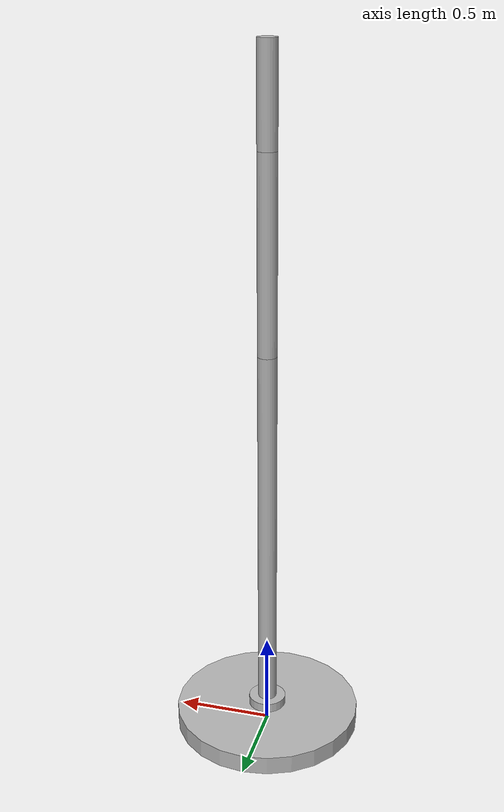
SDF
<?xml version='1.0'?>
<sdf version='1.4'>
    <model name="my_robot">
        <static>false</static>
        <self_collide>1</self_collide>
        <link name='chassis'>
            <pose>0 0 .05 0 0 0</pose>
            <inertial>
            <mass>100 </mass>
            </inertial>
            <collision name='collision'>
                <geometry>
                    <cylinder>
                        <radius>.5</radius>
                        <length>.1</length>
                    </cylinder>
                </geometry>
            </collision>

            <visual name='visual'>
                <geometry>
                    <cylinder>
                        <radius>.5</radius>
                        <length>.1</length>
                    </cylinder>
                </geometry>
            </visual>
        </link>
        <link name='arm1'>
            <pose>0 0 .125 0 0 0</pose>
            <gravity> 0 </gravity>

            <inertial>
            <mass>50 </mass>

            </inertial>
            <collision name='collision'>
                <geometry>
                    <cylinder>
                        <radius>.1</radius>
                        <length>.05</length>
                    </cylinder>
                </geometry>
            </collision>

            <visual name='visual'>
                <geometry>
                    <cylinder>
                        <radius>.1</radius>
                        <length>.05</length>
                    </cylinder>
                </geometry>
            </visual>
        </link>
        <link name='arm2'>
            <pose>0 0 1.15 0 0 0</pose>
           <gravity> 0 </gravity>
            <inertial>
            <mass>20 </mass>

            </inertial>

            <collision name='collision'>
                <geometry>
                    <cylinder>
                        <radius>.05</radius>
                        <length>2.0</length>
                    </cylinder>
                </geometry>
            </collision>

            <visual name='visual'>
                <geometry>
                    <cylinder>
                        <radius>.05</radius>
                        <length>2.0</length>
                    </cylinder>
                </geometry>
            </visual>
        </link>

        <link name='arm3'>
            <pose>0 0 2.65 0 0 0</pose>

            <inertial>
            <mass>1 </mass>

            </inertial>

            <collision name='collision'>
                <geometry>
                    <cylinder>
                        <radius>.05</radius>
                        <length>1.0</length>
                    </cylinder>
                </geometry>
            </collision>

            <visual name='visual'>
                <geometry>
                    <cylinder>
                        <radius>.05</radius>
                        <length>1</length>
                    </cylinder>
                </geometry>
            </visual>
        </link>
        <link name='arm4'>
            <pose>0 0 3.4 0 0 0</pose>

             <inertial>
            <mass>0.5 </mass>

            </inertial>

            <collision name='collision'>
                <geometry>
                    <cylinder>
                        <radius>.05</radius>
                        <length>.5</length>
                    </cylinder>
                </geometry>
            </collision>

            <visual name='visual'>
                <geometry>
                    <cylinder>
                        <radius>.05</radius>
                        <length>.5</length>
                    </cylinder>
                </geometry>
            </visual>
        </link>

        <joint type="revolute" name="chasis_arm1_joint">
            <pose>0 0 -0.025 0 0 0</pose>
            <child>arm1</child>
            <parent>chassis</parent>
            <axis>
                <xyz>0 0 1</xyz>
                <dynamics>
               <damping> 1.0</damping>
               <friction>.3 </friction>

               <limit>

                <lower>-1.0 </lower>
                <upper>1.0 </upper>
                <effort> 40 </effort>
                <velocity>1.0 </velocity>

                </limit>

                </dynamics>
            </axis>
        </joint>

         <joint type="revolute" name="arm1_arm2_joint">
            <pose>0 0 -1 0 0 0</pose>
            <child>arm2</child>
            <parent>arm1</parent>
            <axis>
                <xyz>1 0 0</xyz>
            </axis>
        </joint>

   <joint type="revolute" name="arm2_arm3_joint">
            <pose>0 0 -0.5 0 0 0</pose>
            <child>arm3</child>
            <parent>arm2</parent>
            <axis>
                <xyz>1 0 0</xyz>
            </axis>
        </joint>

         <joint type="revolute" name="arm3_arm4_joint">
            <pose>0 0 -0.25 0 0 0</pose>
            <child>arm4</child>
            <parent>arm3</parent>
            <axis>
                <xyz>1 0 0</xyz>
            </axis>
        </joint>
        <plugin name="arm_control" filename="libarm_gazebo.so" />

    </model>
</sdf>
